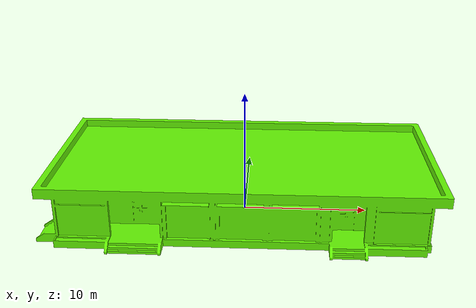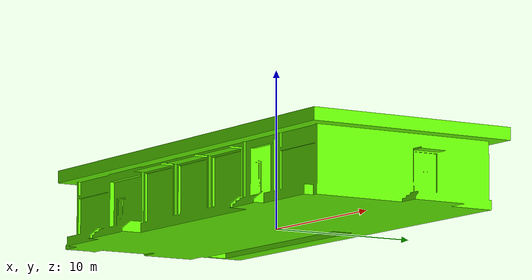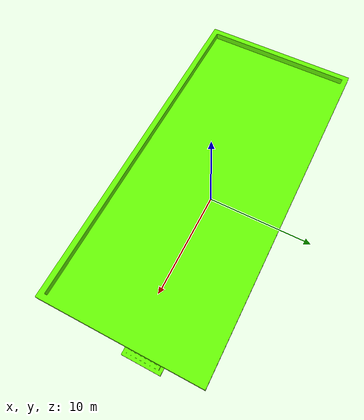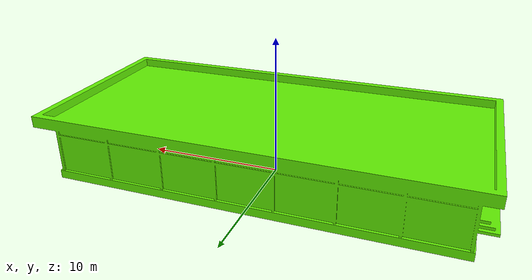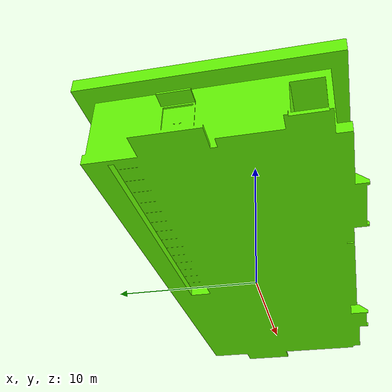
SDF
<?xml version="1.0" ?>
<sdf version="1.8">
  <model name="Control_Room">
    <static>true</static>
    <link name="link">
      <collision name="collision">
        <geometry>
          <mesh>
            <uri>model://Control_Room/Meshes/Control_Room.stl</uri>
            <scale>0.001 0.001 0.001</scale>
          </mesh>
        </geometry>
      </collision>

      <visual name="visual">
        <geometry>
          <mesh>
            <uri>model://Control_Room/Meshes/Control_Room.stl</uri>
            <scale>0.001 0.001 0.001</scale>
          </mesh>
        </geometry>
        <material>
          <diffuse>0.4 0.98 0.012 1</diffuse>
        </material>
      </visual>
    </link>
  </model>
</sdf>
